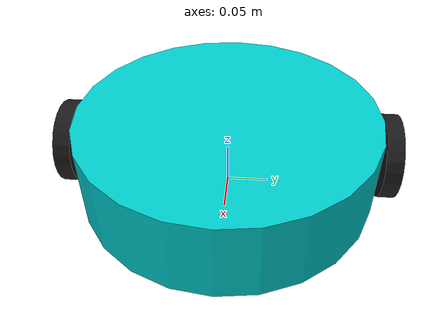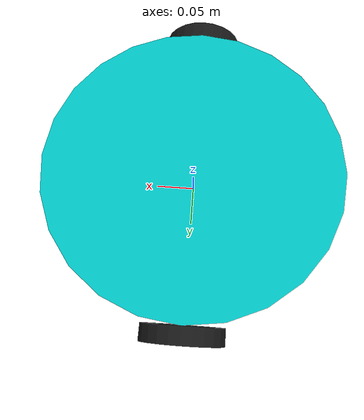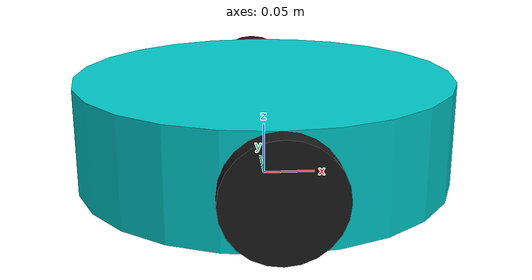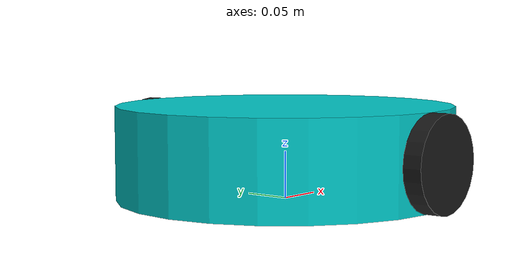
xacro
<?xml version="1.0"?>
<robot xmlns:xacro="http://www.ros.org/wiki/xacro" name="mochibot">

  <!-- PARAMETERS -->

  <xacro:arg name="is_sim" default="false"/>

  <xacro:property name="base_radius" value="0.18"/>
  <xacro:property name="base_length" value="0.10"/>

  <xacro:property name="wheel_radius" value="0.05"/>
  <xacro:property name="wheel_length" value="0.02"/>
  <xacro:property name="wheel_separation" value="0.38"/>

  <xacro:property name="caster_radius" value="0.025"/>

  <!-- BASE FOOTPRINT -->

  <link name="base_footprint"/>

  <joint name="base_footprint_joint" type="fixed">
    <parent link="base_footprint"/>
    <child link="base_link"/>

    <!-- Base center is 5 cm above ground -->
    <origin
      xyz="0 0 ${base_length / 2.0}"
      rpy="0 0 0"/>
  </joint>

  <!-- BASE -->

  <link name="base_link">

    <visual>
      <geometry>
        <cylinder
          radius="${base_radius}"
          length="${base_length}"/>
      </geometry>

      <material name="chassis_cyan">
        <color rgba="0.0 0.8 0.8 1.0"/>
      </material>
    </visual>

    <collision>
      <geometry>
        <cylinder
          radius="${base_radius}"
          length="${base_length}"/>
      </geometry>
    </collision>

    <inertial>
      <mass value="5.0"/>

      <origin
        xyz="0 0 0"
        rpy="0 0 0"/>

      <inertia
        ixx="0.045"
        ixy="0.0"
        ixz="0.0"
        iyy="0.045"
        iyz="0.0"
        izz="0.081"/>
    </inertial>

  </link>

  <!-- LEFT WHEEL -->

  <link name="left_wheel_link">

    <visual>

      <!-- Rotate cylinder so axle is along Y -->
      <origin
        xyz="0 0 0"
        rpy="1.5708 0 0"/>

      <geometry>
        <cylinder
          radius="${wheel_radius}"
          length="${wheel_length}"/>
      </geometry>

      <material name="wheel_black">
        <color rgba="0.1 0.1 0.1 1.0"/>
      </material>

    </visual>

    <collision>

      <!-- Rotate cylinder so axle is along Y -->
      <origin
        xyz="0 0 0"
        rpy="1.5708 0 0"/>

      <geometry>
        <cylinder
          radius="${wheel_radius}"
          length="${wheel_length}"/>
      </geometry>

    </collision>

    <inertial>

      <mass value="0.5"/>

      <origin
        xyz="0 0 0"
        rpy="1.5708 0 0"/>

      <inertia
        ixx="0.00035"
        ixy="0.0"
        ixz="0.0"
        iyy="0.00035"
        iyz="0.0"
        izz="0.000625"/>

    </inertial>

  </link>

  <joint name="left_wheel_joint" type="continuous">

    <parent link="base_link"/>
    <child link="left_wheel_link"/>

    <!--
      Wheel center:
      X = 0
      Y = +0.19
      Z = 0

      Wheel radius = 0.05
      Therefore wheel bottom = -0.05
      Base bottom = -0.05
    -->

    <origin
      xyz="0 ${wheel_separation / 2.0} 0"
      rpy="0 0 0"/>

    <axis xyz="0 1 0"/>

  </joint>

  <!-- RIGHT WHEEL -->

  <link name="right_wheel_link">

    <visual>

      <!-- Rotate cylinder so axle is along Y -->
      <origin
        xyz="0 0 0"
        rpy="1.5708 0 0"/>

      <geometry>
        <cylinder
          radius="${wheel_radius}"
          length="${wheel_length}"/>
      </geometry>

      <material name="wheel_black">
        <color rgba="0.1 0.1 0.1 1.0"/>
      </material>

    </visual>

    <collision>

      <!-- Rotate cylinder so axle is along Y -->
      <origin
        xyz="0 0 0"
        rpy="1.5708 0 0"/>

      <geometry>
        <cylinder
          radius="${wheel_radius}"
          length="${wheel_length}"/>
      </geometry>

    </collision>

    <inertial>

      <mass value="0.5"/>

      <origin
        xyz="0 0 0"
        rpy="1.5708 0 0"/>

      <inertia
        ixx="0.00035"
        ixy="0.0"
        ixz="0.0"
        iyy="0.00035"
        iyz="0.0"
        izz="0.000625"/>

    </inertial>

  </link>

  <joint name="right_wheel_joint" type="continuous">

    <parent link="base_link"/>
    <child link="right_wheel_link"/>

    <!--
      Wheel center:
      X = 0
      Y = -0.19
      Z = 0
    -->

    <origin
      xyz="0 -${wheel_separation / 2.0} 0"
      rpy="0 0 0"/>

    <axis xyz="0 1 0"/>

  </joint>

  <!-- CASTER -->

  <link name="caster_wheel_link">

    <visual>

      <geometry>
        <sphere radius="${caster_radius}"/>
      </geometry>

      <material name="caster_black">
        <color rgba="0.1 0.1 0.1 1.0"/>
      </material>

    </visual>

    <collision>

      <geometry>
        <sphere radius="${caster_radius}"/>
      </geometry>

    </collision>

    <inertial>

      <mass value="0.1"/>

      <origin
        xyz="0 0 0"
        rpy="0 0 0"/>

      <inertia
        ixx="0.000025"
        ixy="0.0"
        ixz="0.0"
        iyy="0.000025"
        iyz="0.0"
        izz="0.000025"/>

    </inertial>

  </link>

  <joint name="caster_wheel_joint" type="fixed">

    <parent link="base_link"/>
    <child link="caster_wheel_link"/>

    <origin
      xyz="${base_radius * 0.6} 0 -${base_length / 2.0 - caster_radius}"
      rpy="0 0 0"/>

  </joint>

  <!-- Make caster frictionless -->
  <gazebo reference="caster_wheel_link">
    <mu1>0.0</mu1>
    <mu2>0.0</mu2>
  </gazebo>

  <!-- SIMULATION ROS 2 CONTROL -->

  <xacro:if value="$(arg is_sim)">

    <ros2_control
      name="MochiBotSystem"
      type="system">

      <hardware>
        <plugin>gz_ros2_control/GazeboSimSystem</plugin>
      </hardware>

      <joint name="left_wheel_joint">

        <command_interface name="velocity">
          <param name="min">-15.0</param>
          <param name="max">15.0</param>
        </command_interface>

        <state_interface name="position"/>
        <state_interface name="velocity"/>

      </joint>

      <joint name="right_wheel_joint">

        <command_interface name="velocity">
          <param name="min">-15.0</param>
          <param name="max">15.0</param>
        </command_interface>

        <state_interface name="position"/>
        <state_interface name="velocity"/>

      </joint>

    </ros2_control>

  </xacro:if>

  <!-- RVIZ / NON-SIMULATION -->

  <xacro:unless value="$(arg is_sim)">

    <ros2_control
      name="MochiBotSystem"
      type="system">

      <hardware>
        <plugin>mock_components/GenericSystem</plugin>
      </hardware>

      <joint name="left_wheel_joint">

        <command_interface name="velocity">
          <param name="min">-15.0</param>
          <param name="max">15.0</param>
        </command_interface>

        <state_interface name="position"/>
        <state_interface name="velocity"/>

      </joint>

      <joint name="right_wheel_joint">

        <command_interface name="velocity">
          <param name="min">-15.0</param>
          <param name="max">15.0</param>
        </command_interface>

        <state_interface name="position"/>
        <state_interface name="velocity"/>

      </joint>

    </ros2_control>

  </xacro:unless>

  <!-- GAZEBO ROS 2 CONTROL -->

  <xacro:if value="$(arg is_sim)">

    <gazebo>

      <plugin
        filename="libgz_ros2_control-system.so"
        name="gz_ros2_control::GazeboSimROS2ControlPlugin">

        <parameters>
          $(find mochibot_bringup)/config/ros2_controllers.yaml
        </parameters>

      </plugin>

    </gazebo>

  </xacro:if>

</robot>
